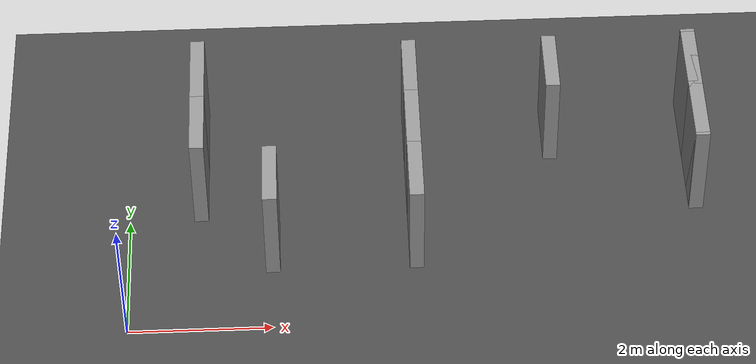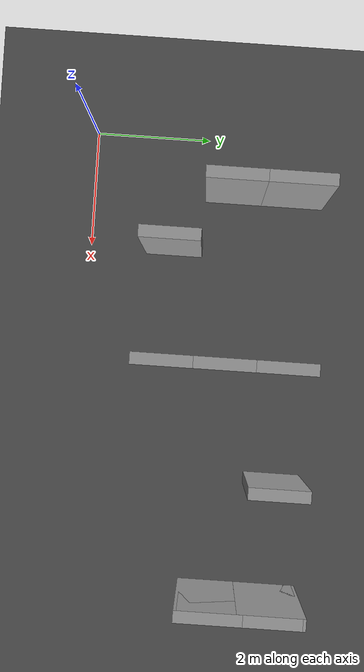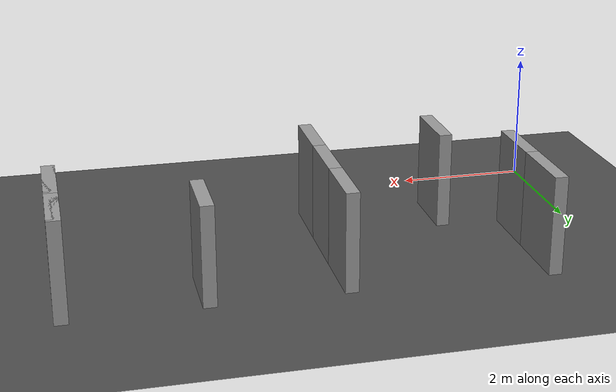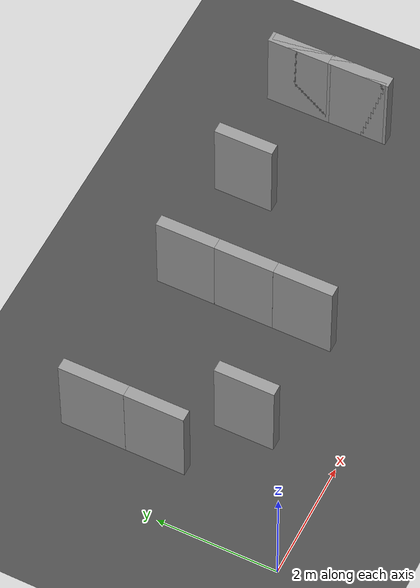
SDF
<sdf version="1.6">
 <world name="default">
  <model name="ground_plane">
   <static>1</static>
   <link name="link">
    <collision name="collision">
     <geometry><plane><normal>0 0 1</normal><size>20 20</size></plane></geometry>
     <surface><friction><ode><mu>100</mu><mu2>50</mu2></ode></friction></surface>
    </collision>
    <visual name="visual">
     <cast_shadows>0</cast_shadows>
     <geometry><plane><normal>0 0 1</normal><size>20 20</size></plane></geometry>
     <material>
      <script>
       <uri>model://asphalt_plane/materials/scripts</uri>
       <uri>model://asphalt_plane/materials/textures</uri>
       <name>vrc/asphalt</name>
      </script>
     </material>
    </visual>
   </link>
  </model>
  <model name="grey_1wall_90_clone_1">
   <static>1</static>
   <link name="link">
    <pose>0 0 0.75 0 -0 0</pose>
    <inertial>
     <mass>5</mass>
     <inertia><ixx>1</ixx><ixy>0</ixy><ixz>0</ixz><iyy>1</iyy><iyz>0</iyz><izz>1</izz></inertia>
    </inertial>
    <visual name="ModelPreview_1::link::visual_1">
     <cast_shadows>0</cast_shadows>
     <geometry><box><size>1 0.2 1.5</size></box></geometry>
     <material>
      <script>
       <uri>model://grey_wall/materials/scripts</uri>
       <uri>model://grey_wall/materials/textures</uri>
       <name>vrc/grey_wall</name>
      </script>
      <ambient>1 1 1 1</ambient>
      <diffuse>1 1 1 1</diffuse>
      <specular>0 0 0 1</specular>
      <emissive>0 0 0 1</emissive>
      <shader type="vertex"><normal_map>__default__</normal_map></shader>
     </material>
    </visual>
    <collision name="collision">
     <geometry><box><size>1 0.2 1.5</size></box></geometry>
     <surface>
      <friction>
       <ode><mu>1</mu><mu2>1</mu2><fdir1>0 0 0</fdir1><slip1>0</slip1><slip2>0</slip2></ode>
       <torsional>
        <coefficient>1</coefficient>
        <patch_radius>0</patch_radius>
        <surface_radius>0</surface_radius>
        <use_patch_radius>1</use_patch_radius>
        <ode><slip>0</slip></ode>
       </torsional>
      </friction>
      <bounce><restitution_coefficient>0</restitution_coefficient><threshold>1e+06</threshold></bounce>
      <contact>
       <collide_without_contact>0</collide_without_contact>
       <collide_without_contact_bitmask>1</collide_without_contact_bitmask>
       <collide_bitmask>1</collide_bitmask>
       <ode>
        <soft_cfm>0</soft_cfm>
        <soft_erp>0.2</soft_erp>
        <kp>1e+13</kp>
        <kd>1</kd>
        <max_vel>0.01</max_vel>
        <min_depth>0</min_depth>
       </ode>
       <bullet>
        <split_impulse>1</split_impulse>
        <split_impulse_penetration_threshold>-0.01</split_impulse_penetration_threshold>
        <soft_cfm>0</soft_cfm>
        <soft_erp>0.2</soft_erp>
        <kp>1e+13</kp>
        <kd>1</kd>
       </bullet>
      </contact>
     </surface>
    </collision>
   </link>
   <static>1</static>
   <pose>1 2.5 0 0 0 1.57</pose>
  </model>
  <model name="grey_1wall_90_clone_2">
   <static>1</static>
   <link name="link">
    <pose>0 0 0.75 0 -0 0</pose>
    <inertial>
     <mass>5</mass>
     <inertia><ixx>1</ixx><ixy>0</ixy><ixz>0</ixz><iyy>1</iyy><iyz>0</iyz><izz>1</izz></inertia>
    </inertial>
    <visual name="ModelPreview_1::link::visual_1">
     <cast_shadows>0</cast_shadows>
     <geometry><box><size>1.1 0.2 1.5</size></box></geometry>
     <material>
      <script>
       <uri>model://grey_wall/materials/scripts</uri>
       <uri>model://grey_wall/materials/textures</uri>
       <name>vrc/grey_wall</name>
      </script>
      <ambient>1 1 1 1</ambient>
      <diffuse>1 1 1 1</diffuse>
      <specular>0 0 0 1</specular>
      <emissive>0 0 0 1</emissive>
      <shader type="vertex"><normal_map>__default__</normal_map></shader>
     </material>
    </visual>
    <collision name="collision">
     <geometry><box><size>1.1 0.2 1.5</size></box></geometry>
     <surface>
      <friction>
       <ode><mu>1</mu><mu2>1</mu2><fdir1>0 0 0</fdir1><slip1>0</slip1><slip2>0</slip2></ode>
       <torsional>
        <coefficient>1</coefficient>
        <patch_radius>0</patch_radius>
        <surface_radius>0</surface_radius>
        <use_patch_radius>1</use_patch_radius>
        <ode><slip>0</slip></ode>
       </torsional>
      </friction>
      <bounce><restitution_coefficient>0</restitution_coefficient><threshold>1e+06</threshold></bounce>
      <contact>
       <collide_without_contact>0</collide_without_contact>
       <collide_without_contact_bitmask>1</collide_without_contact_bitmask>
       <collide_bitmask>1</collide_bitmask>
       <ode>
        <soft_cfm>0</soft_cfm>
        <soft_erp>0.2</soft_erp>
        <kp>1e+13</kp>
        <kd>1</kd>
        <max_vel>0.01</max_vel>
        <min_depth>0</min_depth>
       </ode>
       <bullet>
        <split_impulse>1</split_impulse>
        <split_impulse_penetration_threshold>-0.01</split_impulse_penetration_threshold>
        <soft_cfm>0</soft_cfm>
        <soft_erp>0.2</soft_erp>
        <kp>1e+13</kp>
        <kd>1</kd>
       </bullet>
      </contact>
     </surface>
    </collision>
   </link>
   <static>1</static>
   <pose>1 3.55 0 0 0 1.57</pose>
  </model>
  <model name="grey_1wall_90_clone_2_clone_0">
   <static>1</static>
   <link name="link">
    <pose>0 0 0.75 0 -0 0</pose>
    <inertial>
     <mass>5</mass>
     <inertia><ixx>1</ixx><ixy>0</ixy><ixz>0</ixz><iyy>1</iyy><iyz>0</iyz><izz>1</izz></inertia>
    </inertial>
    <visual name="ModelPreview_1::link::visual_1">
     <cast_shadows>0</cast_shadows>
     <geometry><box><size>1 0.2 1.5</size></box></geometry>
     <material>
      <script>
       <uri>model://grey_wall/materials/scripts</uri>
       <uri>model://grey_wall/materials/textures</uri>
       <name>vrc/grey_wall</name>
      </script>
      <ambient>1 1 1 1</ambient>
      <diffuse>1 1 1 1</diffuse>
      <specular>0 0 0 1</specular>
      <emissive>0 0 0 1</emissive>
      <shader type="vertex"><normal_map>__default__</normal_map></shader>
     </material>
    </visual>
    <collision name="collision">
     <geometry><box><size>1 0.2 1.5</size></box></geometry>
     <surface>
      <friction>
       <ode><mu>1</mu><mu2>1</mu2><fdir1>0 0 0</fdir1><slip1>0</slip1><slip2>0</slip2></ode>
       <torsional>
        <coefficient>1</coefficient>
        <patch_radius>0</patch_radius>
        <surface_radius>0</surface_radius>
        <use_patch_radius>1</use_patch_radius>
        <ode><slip>0</slip></ode>
       </torsional>
      </friction>
      <bounce><restitution_coefficient>0</restitution_coefficient><threshold>1e+06</threshold></bounce>
      <contact>
       <collide_without_contact>0</collide_without_contact>
       <collide_without_contact_bitmask>1</collide_without_contact_bitmask>
       <collide_bitmask>1</collide_bitmask>
       <ode>
        <soft_cfm>0</soft_cfm>
        <soft_erp>0.2</soft_erp>
        <kp>1e+13</kp>
        <kd>1</kd>
        <max_vel>0.01</max_vel>
        <min_depth>0</min_depth>
       </ode>
       <bullet>
        <split_impulse>1</split_impulse>
        <split_impulse_penetration_threshold>-0.01</split_impulse_penetration_threshold>
        <soft_cfm>0</soft_cfm>
        <soft_erp>0.2</soft_erp>
        <kp>1e+13</kp>
        <kd>1</kd>
       </bullet>
      </contact>
     </surface>
    </collision>
   </link>
   <static>1</static>
   <pose>2 1.5 0 0 -0 1.57</pose>
  </model>
  <model name="grey_1wall_90_clone_2_clone_2">
   <static>1</static>
   <link name="link">
    <pose>0 0 0.75 0 -0 0</pose>
    <inertial>
     <mass>5</mass>
     <inertia><ixx>1</ixx><ixy>0</ixy><ixz>0</ixz><iyy>1</iyy><iyz>0</iyz><izz>1</izz></inertia>
    </inertial>
    <visual name="ModelPreview_1::link::visual_1">
     <cast_shadows>0</cast_shadows>
     <geometry><box><size>1 0.2 1.5</size></box></geometry>
     <material>
      <script>
       <uri>model://grey_wall/materials/scripts</uri>
       <uri>model://grey_wall/materials/textures</uri>
       <name>vrc/grey_wall</name>
      </script>
      <ambient>1 1 1 1</ambient>
      <diffuse>1 1 1 1</diffuse>
      <specular>0 0 0 1</specular>
      <emissive>0 0 0 1</emissive>
      <shader type="vertex"><normal_map>__default__</normal_map></shader>
     </material>
    </visual>
    <collision name="collision">
     <geometry><box><size>1 0.2 1.5</size></box></geometry>
     <surface>
      <friction>
       <ode><mu>1</mu><mu2>1</mu2><fdir1>0 0 0</fdir1><slip1>0</slip1><slip2>0</slip2></ode>
       <torsional>
        <coefficient>1</coefficient>
        <patch_radius>0</patch_radius>
        <surface_radius>0</surface_radius>
        <use_patch_radius>1</use_patch_radius>
        <ode><slip>0</slip></ode>
       </torsional>
      </friction>
      <bounce><restitution_coefficient>0</restitution_coefficient><threshold>1e+06</threshold></bounce>
      <contact>
       <collide_without_contact>0</collide_without_contact>
       <collide_without_contact_bitmask>1</collide_without_contact_bitmask>
       <collide_bitmask>1</collide_bitmask>
       <ode>
        <soft_cfm>0</soft_cfm>
        <soft_erp>0.2</soft_erp>
        <kp>1e+13</kp>
        <kd>1</kd>
        <max_vel>0.01</max_vel>
        <min_depth>0</min_depth>
       </ode>
       <bullet>
        <split_impulse>1</split_impulse>
        <split_impulse_penetration_threshold>-0.01</split_impulse_penetration_threshold>
        <soft_cfm>0</soft_cfm>
        <soft_erp>0.2</soft_erp>
        <kp>1e+13</kp>
        <kd>1</kd>
       </bullet>
      </contact>
     </surface>
    </collision>
   </link>
   <static>1</static>
   <pose>4 1.5 0 0 -0 1.57</pose>
  </model>
  <model name="grey_1wall_90_clone_2_clone_3">
   <static>1</static>
   <link name="link">
    <pose>0 0 0.75 0 -0 0</pose>
    <inertial>
     <mass>5</mass>
     <inertia><ixx>1</ixx><ixy>0</ixy><ixz>0</ixz><iyy>1</iyy><iyz>0</iyz><izz>1</izz></inertia>
    </inertial>
    <visual name="ModelPreview_1::link::visual_1">
     <cast_shadows>0</cast_shadows>
     <geometry><box><size>1 0.2 1.5</size></box></geometry>
     <material>
      <script>
       <uri>model://grey_wall/materials/scripts</uri>
       <uri>model://grey_wall/materials/textures</uri>
       <name>vrc/grey_wall</name>
      </script>
      <ambient>1 1 1 1</ambient>
      <diffuse>1 1 1 1</diffuse>
      <specular>0 0 0 1</specular>
      <emissive>0 0 0 1</emissive>
      <shader type="vertex"><normal_map>__default__</normal_map></shader>
     </material>
    </visual>
    <collision name="collision">
     <geometry><box><size>1 0.2 1.5</size></box></geometry>
     <surface>
      <friction>
       <ode><mu>1</mu><mu2>1</mu2><fdir1>0 0 0</fdir1><slip1>0</slip1><slip2>0</slip2></ode>
       <torsional>
        <coefficient>1</coefficient>
        <patch_radius>0</patch_radius>
        <surface_radius>0</surface_radius>
        <use_patch_radius>1</use_patch_radius>
        <ode><slip>0</slip></ode>
       </torsional>
      </friction>
      <bounce><restitution_coefficient>0</restitution_coefficient><threshold>1e+06</threshold></bounce>
      <contact>
       <collide_without_contact>0</collide_without_contact>
       <collide_without_contact_bitmask>1</collide_without_contact_bitmask>
       <collide_bitmask>1</collide_bitmask>
       <ode>
        <soft_cfm>0</soft_cfm>
        <soft_erp>0.2</soft_erp>
        <kp>1e+13</kp>
        <kd>1</kd>
        <max_vel>0.01</max_vel>
        <min_depth>0</min_depth>
       </ode>
       <bullet>
        <split_impulse>1</split_impulse>
        <split_impulse_penetration_threshold>-0.01</split_impulse_penetration_threshold>
        <soft_cfm>0</soft_cfm>
        <soft_erp>0.2</soft_erp>
        <kp>1e+13</kp>
        <kd>1</kd>
       </bullet>
      </contact>
     </surface>
    </collision>
   </link>
   <static>1</static>
   <pose>4 2.5 0 0 -0 1.57</pose>
  </model>
  <model name="grey_1wall_90_clone_2_clone_6">
   <static>1</static>
   <link name="link">
    <pose>0 0 0.75 0 -0 0</pose>
    <inertial>
     <mass>5</mass>
     <inertia><ixx>1</ixx><ixy>0</ixy><ixz>0</ixz><iyy>1</iyy><iyz>0</iyz><izz>1</izz></inertia>
    </inertial>
    <visual name="ModelPreview_1::link::visual_1">
     <cast_shadows>0</cast_shadows>
     <geometry><box><size>1 0.2 1.5</size></box></geometry>
     <material>
      <script>
       <uri>model://grey_wall/materials/scripts</uri>
       <uri>model://grey_wall/materials/textures</uri>
       <name>vrc/grey_wall</name>
      </script>
      <ambient>1 1 1 1</ambient>
      <diffuse>1 1 1 1</diffuse>
      <specular>0 0 0 1</specular>
      <emissive>0 0 0 1</emissive>
      <shader type="vertex"><normal_map>__default__</normal_map></shader>
     </material>
    </visual>
    <collision name="collision">
     <geometry><box><size>1 0.2 1.5</size></box></geometry>
     <surface>
      <friction>
       <ode><mu>1</mu><mu2>1</mu2><fdir1>0 0 0</fdir1><slip1>0</slip1><slip2>0</slip2></ode>
       <torsional>
        <coefficient>1</coefficient>
        <patch_radius>0</patch_radius>
        <surface_radius>0</surface_radius>
        <use_patch_radius>1</use_patch_radius>
        <ode><slip>0</slip></ode>
       </torsional>
      </friction>
      <bounce><restitution_coefficient>0</restitution_coefficient><threshold>1e+06</threshold></bounce>
      <contact>
       <collide_without_contact>0</collide_without_contact>
       <collide_without_contact_bitmask>1</collide_without_contact_bitmask>
       <collide_bitmask>1</collide_bitmask>
       <ode>
        <soft_cfm>0</soft_cfm>
        <soft_erp>0.2</soft_erp>
        <kp>1e+13</kp>
        <kd>1</kd>
        <max_vel>0.01</max_vel>
        <min_depth>0</min_depth>
       </ode>
       <bullet>
        <split_impulse>1</split_impulse>
        <split_impulse_penetration_threshold>-0.01</split_impulse_penetration_threshold>
        <soft_cfm>0</soft_cfm>
        <soft_erp>0.2</soft_erp>
        <kp>1e+13</kp>
        <kd>1</kd>
       </bullet>
      </contact>
     </surface>
    </collision>
   </link>
   <static>1</static>
   <pose>6 3.5 0 0 -0 1.57</pose>
  </model>
  <model name="grey_1wall_90_clone_2_clone_3_clone">
   <static>1</static>
   <link name="link">
    <pose>0 0 0.75 0 -0 0</pose>
    <inertial>
     <mass>5</mass>
     <inertia><ixx>1</ixx><ixy>0</ixy><ixz>0</ixz><iyy>1</iyy><iyz>0</iyz><izz>1</izz></inertia>
    </inertial>
    <visual name="ModelPreview_1::link::visual_1">
     <cast_shadows>0</cast_shadows>
     <geometry><box><size>1 0.2 1.5</size></box></geometry>
     <material>
      <script>
       <uri>model://grey_wall/materials/scripts</uri>
       <uri>model://grey_wall/materials/textures</uri>
       <name>vrc/grey_wall</name>
      </script>
      <ambient>1 1 1 1</ambient>
      <diffuse>1 1 1 1</diffuse>
      <specular>0 0 0 1</specular>
      <emissive>0 0 0 1</emissive>
      <shader type="vertex"><normal_map>__default__</normal_map></shader>
     </material>
    </visual>
    <collision name="collision">
     <geometry><box><size>1 0.2 1.5</size></box></geometry>
     <surface>
      <friction>
       <ode><mu>1</mu><mu2>1</mu2><fdir1>0 0 0</fdir1><slip1>0</slip1><slip2>0</slip2></ode>
       <torsional>
        <coefficient>1</coefficient>
        <patch_radius>0</patch_radius>
        <surface_radius>0</surface_radius>
        <use_patch_radius>1</use_patch_radius>
        <ode><slip>0</slip></ode>
       </torsional>
      </friction>
      <bounce><restitution_coefficient>0</restitution_coefficient><threshold>1e+06</threshold></bounce>
      <contact>
       <collide_without_contact>0</collide_without_contact>
       <collide_without_contact_bitmask>1</collide_without_contact_bitmask>
       <collide_bitmask>1</collide_bitmask>
       <ode>
        <soft_cfm>0</soft_cfm>
        <soft_erp>0.2</soft_erp>
        <kp>1e+13</kp>
        <kd>1</kd>
        <max_vel>0.01</max_vel>
        <min_depth>0</min_depth>
       </ode>
       <bullet>
        <split_impulse>1</split_impulse>
        <split_impulse_penetration_threshold>-0.01</split_impulse_penetration_threshold>
        <soft_cfm>0</soft_cfm>
        <soft_erp>0.2</soft_erp>
        <kp>1e+13</kp>
        <kd>1</kd>
       </bullet>
      </contact>
     </surface>
    </collision>
   </link>
   <static>1</static>
   <pose>4 3.5 0 0 -0 1.57</pose>
  </model>
  <model name="grey_1wall_90_std_clone">
   <static>1</static>
   <link name="link">
    <pose>0 0 0.75 0 -0 0</pose>
    <inertial>
     <mass>5</mass>
     <inertia><ixx>1</ixx><ixy>0</ixy><ixz>0</ixz><iyy>1</iyy><iyz>0</iyz><izz>1</izz></inertia>
    </inertial>
    <visual name="ModelPreview_12::link::visual_3">
     <cast_shadows>0</cast_shadows>
     <geometry><box><size>1.1 0.2 1.5</size></box></geometry>
     <material>
      <script>
       <uri>model://grey_wall/materials/scripts</uri>
       <uri>model://grey_wall/materials/textures</uri>
       <name>vrc/grey_wall</name>
      </script>
      <ambient>1 1 1 1</ambient>
      <diffuse>1 1 1 1</diffuse>
      <specular>0 0 0 1</specular>
      <emissive>0 0 0 1</emissive>
      <shader type="vertex"><normal_map>__default__</normal_map></shader>
     </material>
    </visual>
    <visual name="ModelPreview_12::link::visual_4">
     <cast_shadows>0</cast_shadows>
     <geometry><box><size>1.1 0.2 1.5</size></box></geometry>
     <material>
      <script>
       <uri>model://grey_wall/materials/scripts</uri>
       <uri>model://grey_wall/materials/textures</uri>
       <name>vrc/grey_wall</name>
      </script>
      <ambient>1 1 1 1</ambient>
      <diffuse>1 1 1 1</diffuse>
      <specular>0 0 0 1</specular>
      <emissive>0 0 0 1</emissive>
      <shader type="vertex"><normal_map>__default__</normal_map></shader>
     </material>
    </visual>
    <visual name="ModelPreview_12::link::visual_1">
     <cast_shadows>0</cast_shadows>
     <geometry><box><size>1 0.2 1.5</size></box></geometry>
     <material>
      <script>
       <uri>model://grey_wall/materials/scripts</uri>
       <uri>model://grey_wall/materials/textures</uri>
       <name>vrc/grey_wall</name>
      </script>
      <ambient>1 1 1 1</ambient>
      <diffuse>1 1 1 1</diffuse>
      <specular>0 0 0 1</specular>
      <emissive>0 0 0 1</emissive>
      <shader type="vertex"><normal_map>__default__</normal_map></shader>
     </material>
    </visual>
    <visual name="ModelPreview_1::link::visual_1">
     <cast_shadows>0</cast_shadows>
     <geometry><box><size>1.1 0.2 1.5</size></box></geometry>
     <material>
      <script>
       <uri>model://grey_wall/materials/scripts</uri>
       <uri>model://grey_wall/materials/textures</uri>
       <name>vrc/grey_wall</name>
      </script>
      <ambient>1 1 1 1</ambient>
      <diffuse>1 1 1 1</diffuse>
      <specular>0 0 0 1</specular>
      <emissive>0 0 0 1</emissive>
      <shader type="vertex"><normal_map>__default__</normal_map></shader>
     </material>
    </visual>
    <visual name="ModelPreview_12::link::visual_2">
     <cast_shadows>0</cast_shadows>
     <geometry><box><size>1.1 0.2 1.5</size></box></geometry>
     <material>
      <script>
       <uri>model://grey_wall/materials/scripts</uri>
       <uri>model://grey_wall/materials/textures</uri>
       <name>vrc/grey_wall</name>
      </script>
      <ambient>1 1 1 1</ambient>
      <diffuse>1 1 1 1</diffuse>
      <specular>0 0 0 1</specular>
      <emissive>0 0 0 1</emissive>
      <shader type="vertex"><normal_map>__default__</normal_map></shader>
     </material>
    </visual>
    <collision name="collision">
     <geometry><box><size>1 0.2 1.5</size></box></geometry>
     <surface>
      <friction>
       <ode><mu>1</mu><mu2>1</mu2><fdir1>0 0 0</fdir1><slip1>0</slip1><slip2>0</slip2></ode>
       <torsional>
        <coefficient>1</coefficient>
        <patch_radius>0</patch_radius>
        <surface_radius>0</surface_radius>
        <use_patch_radius>1</use_patch_radius>
        <ode><slip>0</slip></ode>
       </torsional>
      </friction>
      <bounce><restitution_coefficient>0</restitution_coefficient><threshold>1e+06</threshold></bounce>
      <contact>
       <collide_without_contact>0</collide_without_contact>
       <collide_without_contact_bitmask>1</collide_without_contact_bitmask>
       <collide_bitmask>1</collide_bitmask>
       <ode>
        <soft_cfm>0</soft_cfm>
        <soft_erp>0.2</soft_erp>
        <kp>1e+13</kp>
        <kd>1</kd>
        <max_vel>0.01</max_vel>
        <min_depth>0</min_depth>
       </ode>
       <bullet>
        <split_impulse>1</split_impulse>
        <split_impulse_penetration_threshold>-0.01</split_impulse_penetration_threshold>
        <soft_cfm>0</soft_cfm>
        <soft_erp>0.2</soft_erp>
        <kp>1e+13</kp>
        <kd>1</kd>
       </bullet>
      </contact>
     </surface>
    </collision>
   </link>
   <static>1</static>
   <pose>8 2.5 0 0 -0 1.57</pose>
  </model>
  <model name="grey_1wall_90_std_clone_0">
   <static>1</static>
   <link name="link">
    <pose>0 0 0.75 0 -0 0</pose>
    <inertial>
     <mass>5</mass>
     <inertia><ixx>1</ixx><ixy>0</ixy><ixz>0</ixz><iyy>1</iyy><iyz>0</iyz><izz>1</izz></inertia>
    </inertial>
    <visual name="ModelPreview_12::link::visual_3">
     <cast_shadows>0</cast_shadows>
     <geometry><box><size>1 0.2 1.5</size></box></geometry>
     <material>
      <script>
       <uri>model://grey_wall/materials/scripts</uri>
       <uri>model://grey_wall/materials/textures</uri>
       <name>vrc/grey_wall</name>
      </script>
      <ambient>1 1 1 1</ambient>
      <diffuse>1 1 1 1</diffuse>
      <specular>0 0 0 1</specular>
      <emissive>0 0 0 1</emissive>
      <shader type="vertex"><normal_map>__default__</normal_map></shader>
     </material>
    </visual>
    <visual name="ModelPreview_12::link::visual_4">
     <cast_shadows>0</cast_shadows>
     <geometry><box><size>1 0.2 1.5</size></box></geometry>
     <material>
      <script>
       <uri>model://grey_wall/materials/scripts</uri>
       <uri>model://grey_wall/materials/textures</uri>
       <name>vrc/grey_wall</name>
      </script>
      <ambient>1 1 1 1</ambient>
      <diffuse>1 1 1 1</diffuse>
      <specular>0 0 0 1</specular>
      <emissive>0 0 0 1</emissive>
      <shader type="vertex"><normal_map>__default__</normal_map></shader>
     </material>
    </visual>
    <visual name="ModelPreview_12::link::visual_1">
     <cast_shadows>0</cast_shadows>
     <geometry><box><size>1 0.2 1.5</size></box></geometry>
     <material>
      <script>
       <uri>model://grey_wall/materials/scripts</uri>
       <uri>model://grey_wall/materials/textures</uri>
       <name>vrc/grey_wall</name>
      </script>
      <ambient>1 1 1 1</ambient>
      <diffuse>1 1 1 1</diffuse>
      <specular>0 0 0 1</specular>
      <emissive>0 0 0 1</emissive>
      <shader type="vertex"><normal_map>__default__</normal_map></shader>
     </material>
    </visual>
    <visual name="ModelPreview_1::link::visual_1">
     <cast_shadows>0</cast_shadows>
     <geometry><box><size>1.1 0.2 1.5</size></box></geometry>
     <material>
      <script>
       <uri>model://grey_wall/materials/scripts</uri>
       <uri>model://grey_wall/materials/textures</uri>
       <name>vrc/grey_wall</name>
      </script>
      <ambient>1 1 1 1</ambient>
      <diffuse>1 1 1 1</diffuse>
      <specular>0 0 0 1</specular>
      <emissive>0 0 0 1</emissive>
      <shader type="vertex"><normal_map>__default__</normal_map></shader>
     </material>
    </visual>
    <visual name="ModelPreview_12::link::visual_2">
     <cast_shadows>0</cast_shadows>
     <geometry><box><size>1.1 0.2 1.5</size></box></geometry>
     <material>
      <script>
       <uri>model://grey_wall/materials/scripts</uri>
       <uri>model://grey_wall/materials/textures</uri>
       <name>vrc/grey_wall</name>
      </script>
      <ambient>1 1 1 1</ambient>
      <diffuse>1 1 1 1</diffuse>
      <specular>0 0 0 1</specular>
      <emissive>0 0 0 1</emissive>
      <shader type="vertex"><normal_map>__default__</normal_map></shader>
     </material>
    </visual>
    <collision name="collision">
     <geometry><box><size>1 0.2 1.5</size></box></geometry>
     <surface>
      <friction>
       <ode><mu>1</mu><mu2>1</mu2><fdir1>0 0 0</fdir1><slip1>0</slip1><slip2>0</slip2></ode>
       <torsional>
        <coefficient>1</coefficient>
        <patch_radius>0</patch_radius>
        <surface_radius>0</surface_radius>
        <use_patch_radius>1</use_patch_radius>
        <ode><slip>0</slip></ode>
       </torsional>
      </friction>
      <bounce><restitution_coefficient>0</restitution_coefficient><threshold>1e+06</threshold></bounce>
      <contact>
       <collide_without_contact>0</collide_without_contact>
       <collide_without_contact_bitmask>1</collide_without_contact_bitmask>
       <collide_bitmask>1</collide_bitmask>
       <ode>
        <soft_cfm>0</soft_cfm>
        <soft_erp>0.2</soft_erp>
        <kp>1e+13</kp>
        <kd>1</kd>
        <max_vel>0.01</max_vel>
        <min_depth>0</min_depth>
       </ode>
       <bullet>
        <split_impulse>1</split_impulse>
        <split_impulse_penetration_threshold>-0.01</split_impulse_penetration_threshold>
        <soft_cfm>0</soft_cfm>
        <soft_erp>0.2</soft_erp>
        <kp>1e+13</kp>
        <kd>1</kd>
       </bullet>
      </contact>
     </surface>
    </collision>
   </link>
   <static>1</static>
   <pose>8 3.5 0 0 -0 1.57</pose>
  </model>
 </world>
</sdf>
